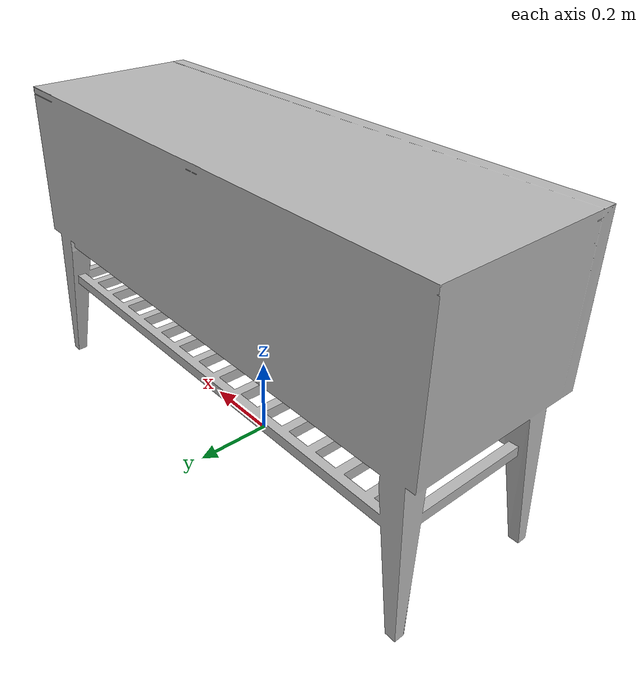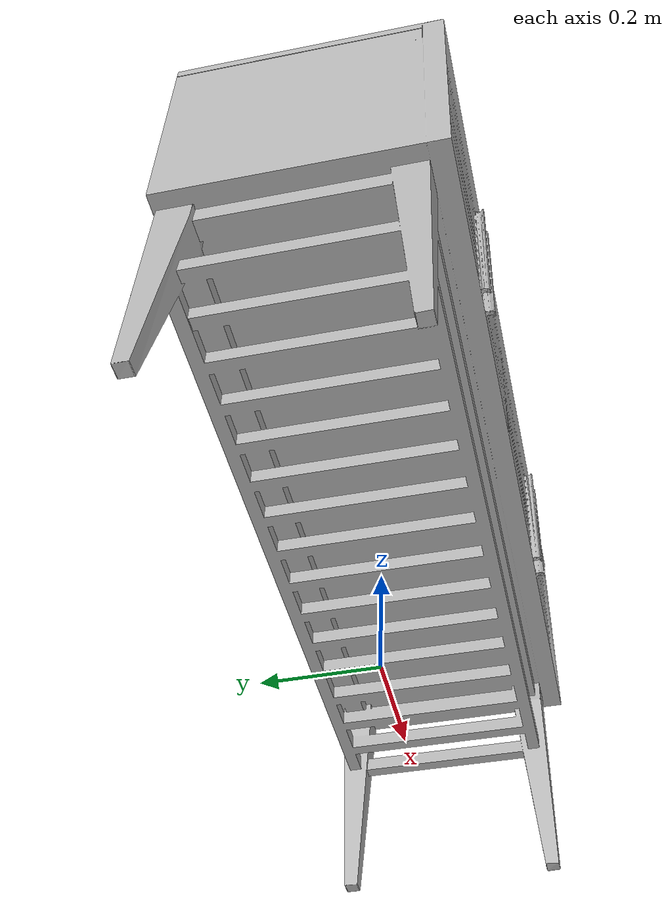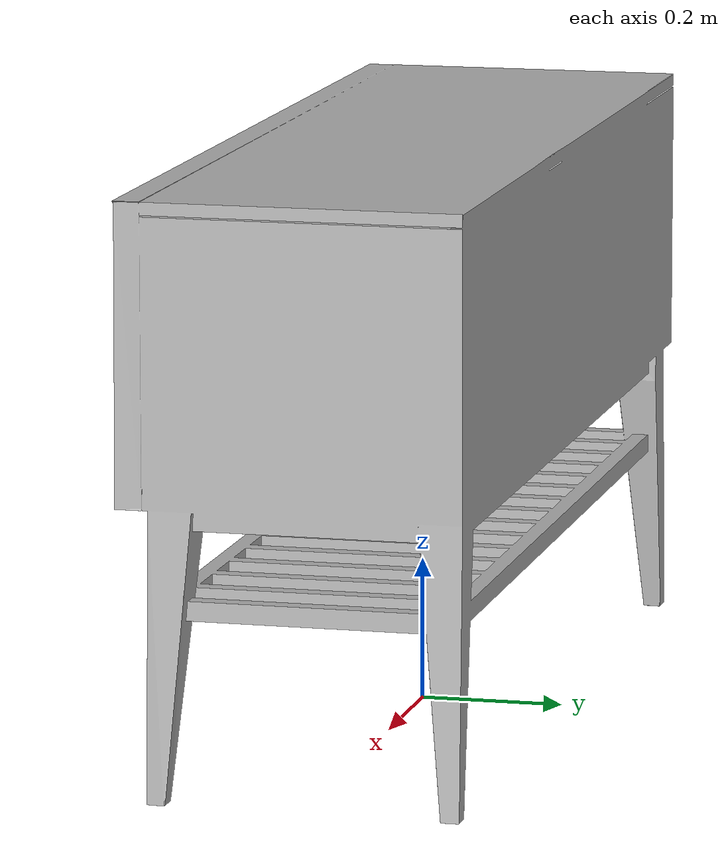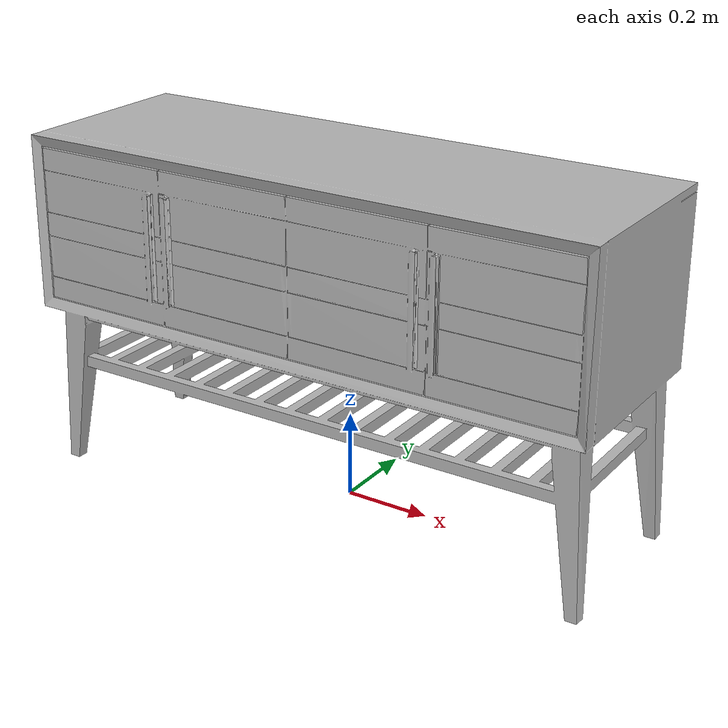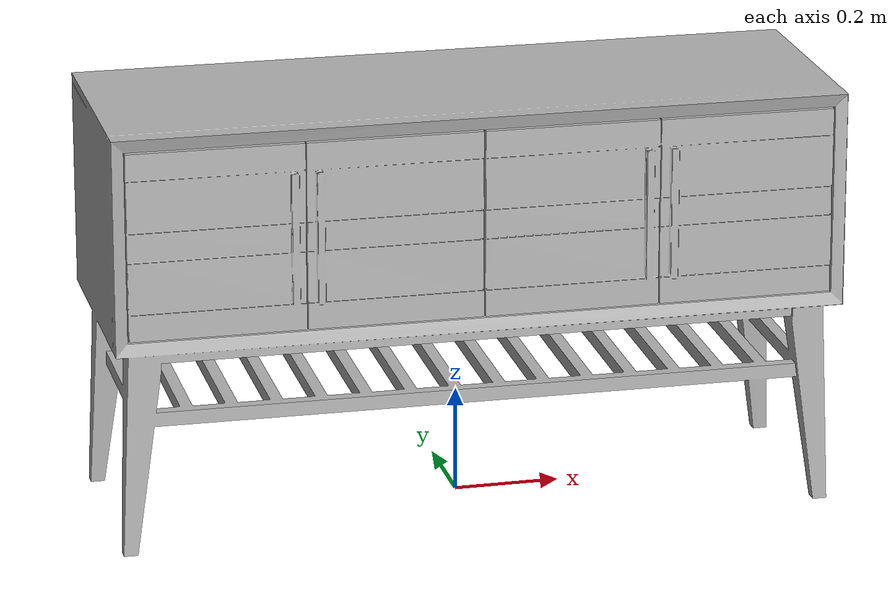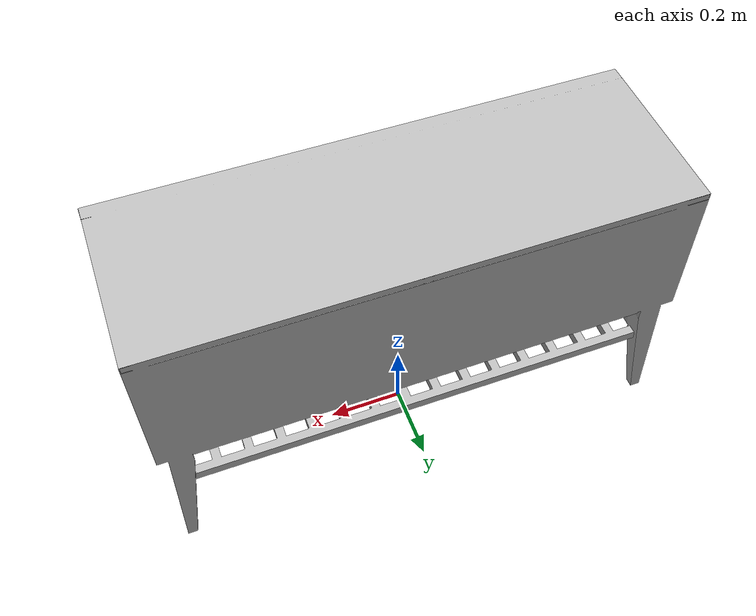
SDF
<sdf version="1.6">
	<model name="Sideboards_O42fc94e60381_lod0">
		<link name="main_link">
			<visual name="visual_RootNode">
				<geometry>
					<mesh>
						<uri>model://Sideboards_O42fc94e60381_lod0/meshes/visual_RootNode.dae</uri>
					</mesh>
				</geometry>
			</visual>
			<collision name="collision_RootNode_lod0_0">
				<geometry>
					<mesh>
						<uri>model://Sideboards_O42fc94e60381_lod0/meshes/collision_RootNode_lod0_0.dae</uri>
					</mesh>
				</geometry>
			</collision>
		</link>
	</model>
</sdf>
